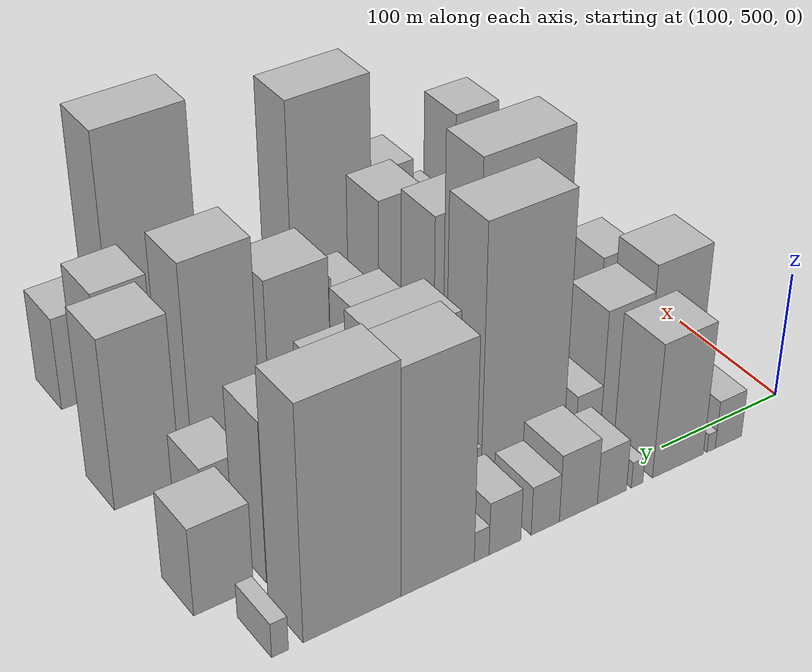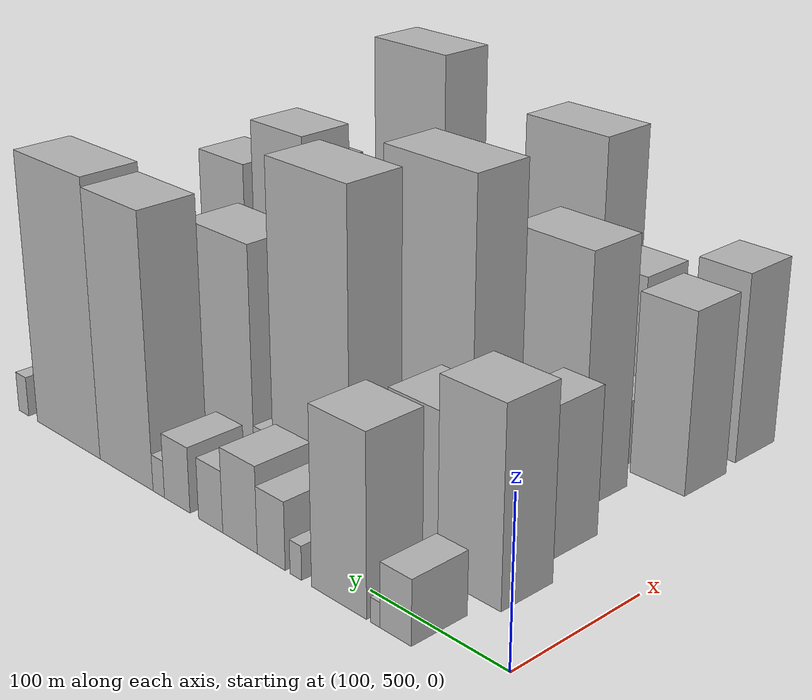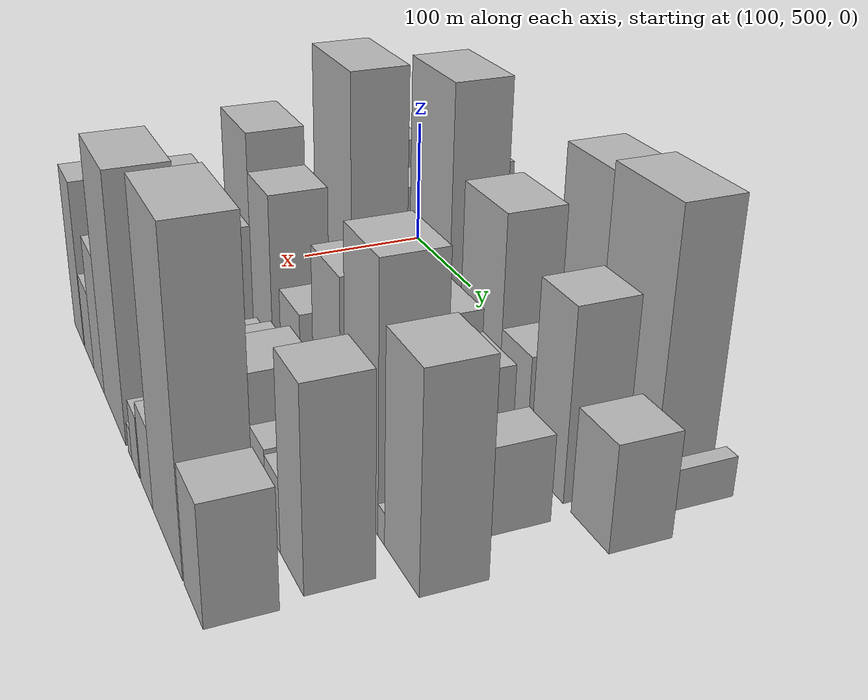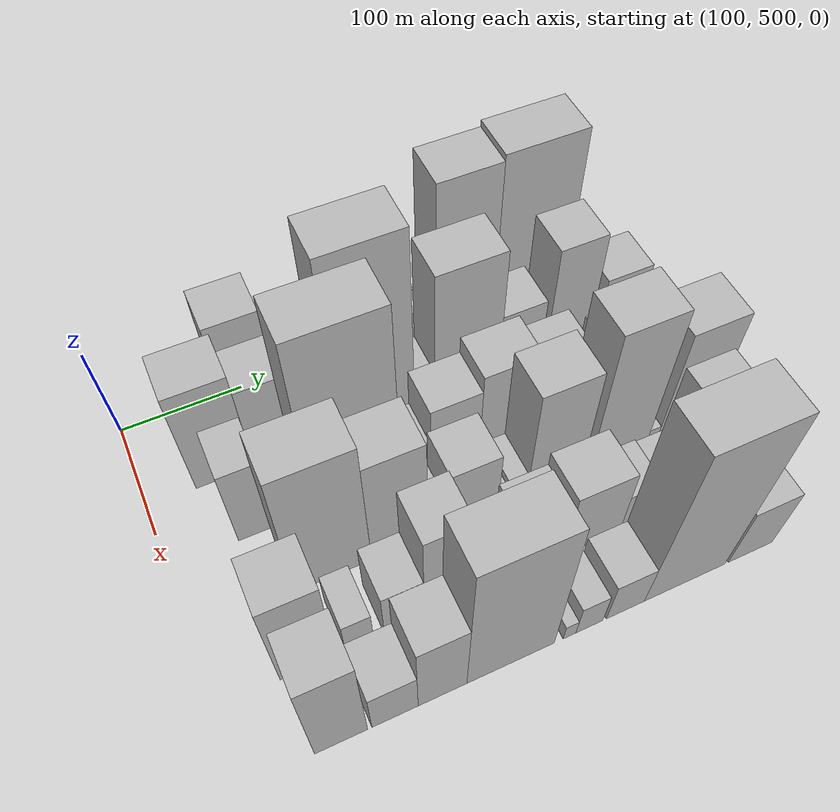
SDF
<sdf version="1.6">
 <world name="default">
  <model name="building_37">
   <static>1</static>
   <pose>100.0000 559.9014 0 0.000000 0.000000 0.000000</pose>
   <link name="link">
    <pose>0 0 19.50 0 0 0</pose>
    <collision name="collision"><geometry><box><size>40.0000 22.7215 39.0000</size></box></geometry></collision>
    <visual name="visual">
     <cast_shadows>0</cast_shadows>
     <geometry><box><size>40.0000 22.7215 39.0000</size></box></geometry>
     <material>
      <script>
       <uri>model://HANNAS_wall/materials/scripts</uri>
       <uri>model://HANNAS_wall/materials/textures</uri>
       <name>vrc/HANNAS_wall</name>
      </script>
     </material>
    </visual>
   </link>
  </model>
  <model name="building_38">
   <static>1</static>
   <pose>100.0000 574.8513 0 0.000000 0.000000 0.000000</pose>
   <link name="link">
    <pose>0 0 7.50 0 0 0</pose>
    <collision name="collision"><geometry><box><size>40.0000 7.1783 15.0000</size></box></geometry></collision>
    <visual name="visual">
     <cast_shadows>0</cast_shadows>
     <geometry><box><size>40.0000 7.1783 15.0000</size></box></geometry>
     <material>
      <script>
       <uri>model://HANNAS_wall/materials/scripts</uri>
       <uri>model://HANNAS_wall/materials/textures</uri>
       <name>vrc/HANNAS_wall</name>
      </script>
     </material>
    </visual>
   </link>
  </model>
  <model name="building_39">
   <static>1</static>
   <pose>100.0000 602.8528 0 0.000000 0.000000 0.000000</pose>
   <link name="link">
    <pose>0 0 54.00 0 0 0</pose>
    <collision name="collision"><geometry><box><size>40.0000 42.8248 108.0000</size></box></geometry></collision>
    <visual name="visual">
     <cast_shadows>0</cast_shadows>
     <geometry><box><size>40.0000 42.8248 108.0000</size></box></geometry>
     <material>
      <script>
       <uri>model://HANNAS_wall/materials/scripts</uri>
       <uri>model://HANNAS_wall/materials/textures</uri>
       <name>vrc/HANNAS_wall</name>
      </script>
     </material>
    </visual>
   </link>
  </model>
  <model name="building_40">
   <static>1</static>
   <pose>100.0000 637.0254 0 0.000000 0.000000 0.000000</pose>
   <link name="link">
    <pose>0 0 10.50 0 0 0</pose>
    <collision name="collision"><geometry><box><size>40.0000 9.5204 21.0000</size></box></geometry></collision>
    <visual name="visual">
     <cast_shadows>0</cast_shadows>
     <geometry><box><size>40.0000 9.5204 21.0000</size></box></geometry>
     <material>
      <script>
       <uri>model://HANNAS_wall/materials/scripts</uri>
       <uri>model://HANNAS_wall/materials/textures</uri>
       <name>vrc/HANNAS_wall</name>
      </script>
     </material>
    </visual>
   </link>
  </model>
  <model name="building_41">
   <static>1</static>
   <pose>100.0000 657.5526 0 0.000000 0.000000 0.000000</pose>
   <link name="link">
    <pose>0 0 21.00 0 0 0</pose>
    <collision name="collision"><geometry><box><size>40.0000 23.5340 42.0000</size></box></geometry></collision>
    <visual name="visual">
     <cast_shadows>0</cast_shadows>
     <geometry><box><size>40.0000 23.5340 42.0000</size></box></geometry>
     <material>
      <script>
       <uri>model://HANNAS_wall/materials/scripts</uri>
       <uri>model://HANNAS_wall/materials/textures</uri>
       <name>vrc/HANNAS_wall</name>
      </script>
     </material>
    </visual>
   </link>
  </model>
  <model name="building_42">
   <static>1</static>
   <pose>100.0000 684.4716 0 0.000000 0.000000 0.000000</pose>
   <link name="link">
    <pose>0 0 27.00 0 0 0</pose>
    <collision name="collision"><geometry><box><size>40.0000 30.3041 54.0000</size></box></geometry></collision>
    <visual name="visual">
     <cast_shadows>0</cast_shadows>
     <geometry><box><size>40.0000 30.3041 54.0000</size></box></geometry>
     <material>
      <script>
       <uri>model://HANNAS_wall/materials/scripts</uri>
       <uri>model://HANNAS_wall/materials/textures</uri>
       <name>vrc/HANNAS_wall</name>
      </script>
     </material>
    </visual>
   </link>
  </model>
  <model name="building_43">
   <static>1</static>
   <pose>100.0000 710.6328 0 0.000000 0.000000 0.000000</pose>
   <link name="link">
    <pose>0 0 19.50 0 0 0</pose>
    <collision name="collision"><geometry><box><size>40.0000 22.0183 39.0000</size></box></geometry></collision>
    <visual name="visual">
     <cast_shadows>0</cast_shadows>
     <geometry><box><size>40.0000 22.0183 39.0000</size></box></geometry>
     <material>
      <script>
       <uri>model://HANNAS_wall/materials/scripts</uri>
       <uri>model://HANNAS_wall/materials/textures</uri>
       <name>vrc/HANNAS_wall</name>
      </script>
     </material>
    </visual>
   </link>
  </model>
  <model name="building_44">
   <static>1</static>
   <pose>100.0000 741.7868 0 0.000000 0.000000 0.000000</pose>
   <link name="link">
    <pose>0 0 21.00 0 0 0</pose>
    <collision name="collision"><geometry><box><size>40.0000 24.2898 42.0000</size></box></geometry></collision>
    <visual name="visual">
     <cast_shadows>0</cast_shadows>
     <geometry><box><size>40.0000 24.2898 42.0000</size></box></geometry>
     <material>
      <script>
       <uri>model://HANNAS_wall/materials/scripts</uri>
       <uri>model://HANNAS_wall/materials/textures</uri>
       <name>vrc/HANNAS_wall</name>
      </script>
     </material>
    </visual>
   </link>
  </model>
  <model name="building_45">
   <static>1</static>
   <pose>100.0000 759.4877 0 0.000000 0.000000 0.000000</pose>
   <link name="link">
    <pose>0 0 12.00 0 0 0</pose>
    <collision name="collision"><geometry><box><size>40.0000 11.1120 24.0000</size></box></geometry></collision>
    <visual name="visual">
     <cast_shadows>0</cast_shadows>
     <geometry><box><size>40.0000 11.1120 24.0000</size></box></geometry>
     <material>
      <script>
       <uri>model://HANNAS_wall/materials/scripts</uri>
       <uri>model://HANNAS_wall/materials/textures</uri>
       <name>vrc/HANNAS_wall</name>
      </script>
     </material>
    </visual>
   </link>
  </model>
  <model name="building_46">
   <static>1</static>
   <pose>100.0000 791.9867 0 0.000000 0.000000 0.000000</pose>
   <link name="link">
    <pose>0 0 87.00 0 0 0</pose>
    <collision name="collision"><geometry><box><size>40.0000 53.8859 174.0000</size></box></geometry></collision>
    <visual name="visual">
     <cast_shadows>0</cast_shadows>
     <geometry><box><size>40.0000 53.8859 174.0000</size></box></geometry>
     <material>
      <script>
       <uri>model://HANNAS_wall/materials/scripts</uri>
       <uri>model://HANNAS_wall/materials/textures</uri>
       <name>vrc/HANNAS_wall</name>
      </script>
     </material>
    </visual>
   </link>
  </model>
  <model name="building_47">
   <static>1</static>
   <pose>100.0000 853.4867 0 0.000000 0.000000 0.000000</pose>
   <link name="link">
    <pose>0 0 90.00 0 0 0</pose>
    <collision name="collision"><geometry><box><size>40.0000 69.1143 180.0000</size></box></geometry></collision>
    <visual name="visual">
     <cast_shadows>0</cast_shadows>
     <geometry><box><size>40.0000 69.1143 180.0000</size></box></geometry>
     <material>
      <script>
       <uri>model://HANNAS_wall/materials/scripts</uri>
       <uri>model://HANNAS_wall/materials/textures</uri>
       <name>vrc/HANNAS_wall</name>
      </script>
     </material>
    </visual>
   </link>
  </model>
  <model name="building_48">
   <static>1</static>
   <pose>100.0000 903.7542 0 0.000000 0.000000 0.000000</pose>
   <link name="link">
    <pose>0 0 13.50 0 0 0</pose>
    <collision name="collision"><geometry><box><size>40.0000 11.4207 27.0000</size></box></geometry></collision>
    <visual name="visual">
     <cast_shadows>0</cast_shadows>
     <geometry><box><size>40.0000 11.4207 27.0000</size></box></geometry>
     <material>
      <script>
       <uri>model://HANNAS_wall/materials/scripts</uri>
       <uri>model://HANNAS_wall/materials/textures</uri>
       <name>vrc/HANNAS_wall</name>
      </script>
     </material>
    </visual>
   </link>
  </model>
  <model name="building_85">
   <static>1</static>
   <pose>155.0000 562.0766 0 0.000000 0.000000 0.000000</pose>
   <link name="link">
    <pose>0 0 60.00 0 0 0</pose>
    <collision name="collision"><geometry><box><size>40.0000 46.4709 120.0000</size></box></geometry></collision>
    <visual name="visual">
     <cast_shadows>0</cast_shadows>
     <geometry><box><size>40.0000 46.4709 120.0000</size></box></geometry>
     <material>
      <script>
       <uri>model://HANNAS_wall/materials/scripts</uri>
       <uri>model://HANNAS_wall/materials/textures</uri>
       <name>vrc/HANNAS_wall</name>
      </script>
     </material>
    </visual>
   </link>
  </model>
  <model name="building_86">
   <static>1</static>
   <pose>155.0000 604.4130 0 0.000000 0.000000 0.000000</pose>
   <link name="link">
    <pose>0 0 49.50 0 0 0</pose>
    <collision name="collision"><geometry><box><size>40.0000 38.2018 99.0000</size></box></geometry></collision>
    <visual name="visual">
     <cast_shadows>0</cast_shadows>
     <geometry><box><size>40.0000 38.2018 99.0000</size></box></geometry>
     <material>
      <script>
       <uri>model://HANNAS_wall/materials/scripts</uri>
       <uri>model://HANNAS_wall/materials/textures</uri>
       <name>vrc/HANNAS_wall</name>
      </script>
     </material>
    </visual>
   </link>
  </model>
  <model name="building_87">
   <static>1</static>
   <pose>155.0000 634.0637 0 0.000000 0.000000 0.000000</pose>
   <link name="link">
    <pose>0 0 19.50 0 0 0</pose>
    <collision name="collision"><geometry><box><size>40.0000 21.0996 39.0000</size></box></geometry></collision>
    <visual name="visual">
     <cast_shadows>0</cast_shadows>
     <geometry><box><size>40.0000 21.0996 39.0000</size></box></geometry>
     <material>
      <script>
       <uri>model://HANNAS_wall/materials/scripts</uri>
       <uri>model://HANNAS_wall/materials/textures</uri>
       <name>vrc/HANNAS_wall</name>
      </script>
     </material>
    </visual>
   </link>
  </model>
  <model name="building_88">
   <static>1</static>
   <pose>155.0000 687.7548 0 0.000000 0.000000 0.000000</pose>
   <link name="link">
    <pose>0 0 102.00 0 0 0</pose>
    <collision name="collision"><geometry><box><size>40.0000 66.2826 204.0000</size></box></geometry></collision>
    <visual name="visual">
     <cast_shadows>0</cast_shadows>
     <geometry><box><size>40.0000 66.2826 204.0000</size></box></geometry>
     <material>
      <script>
       <uri>model://HANNAS_wall/materials/scripts</uri>
       <uri>model://HANNAS_wall/materials/textures</uri>
       <name>vrc/HANNAS_wall</name>
      </script>
     </material>
    </visual>
   </link>
  </model>
  <model name="building_89">
   <static>1</static>
   <pose>155.0000 729.8354 0 0.000000 0.000000 0.000000</pose>
   <link name="link">
    <pose>0 0 16.50 0 0 0</pose>
    <collision name="collision"><geometry><box><size>40.0000 17.8785 33.0000</size></box></geometry></collision>
    <visual name="visual">
     <cast_shadows>0</cast_shadows>
     <geometry><box><size>40.0000 17.8785 33.0000</size></box></geometry>
     <material>
      <script>
       <uri>model://HANNAS_wall/materials/scripts</uri>
       <uri>model://HANNAS_wall/materials/textures</uri>
       <name>vrc/HANNAS_wall</name>
      </script>
     </material>
    </visual>
   </link>
  </model>
  <model name="building_90">
   <static>1</static>
   <pose>155.0000 767.5623 0 0.000000 0.000000 0.000000</pose>
   <link name="link">
    <pose>0 0 73.50 0 0 0</pose>
    <collision name="collision"><geometry><box><size>40.0000 57.5753 147.0000</size></box></geometry></collision>
    <visual name="visual">
     <cast_shadows>0</cast_shadows>
     <geometry><box><size>40.0000 57.5753 147.0000</size></box></geometry>
     <material>
      <script>
       <uri>model://HANNAS_wall/materials/scripts</uri>
       <uri>model://HANNAS_wall/materials/textures</uri>
       <name>vrc/HANNAS_wall</name>
      </script>
     </material>
    </visual>
   </link>
  </model>
  <model name="building_91">
   <static>1</static>
   <pose>155.0000 815.6131 0 0.000000 0.000000 0.000000</pose>
   <link name="link">
    <pose>0 0 36.00 0 0 0</pose>
    <collision name="collision"><geometry><box><size>40.0000 38.5262 72.0000</size></box></geometry></collision>
    <visual name="visual">
     <cast_shadows>0</cast_shadows>
     <geometry><box><size>40.0000 38.5262 72.0000</size></box></geometry>
     <material>
      <script>
       <uri>model://HANNAS_wall/materials/scripts</uri>
       <uri>model://HANNAS_wall/materials/textures</uri>
       <name>vrc/HANNAS_wall</name>
      </script>
     </material>
    </visual>
   </link>
  </model>
  <model name="building_92">
   <static>1</static>
   <pose>155.0000 860.1425 0 0.000000 0.000000 0.000000</pose>
   <link name="link">
    <pose>0 0 63.00 0 0 0</pose>
    <collision name="collision"><geometry><box><size>40.0000 40.5325 126.0000</size></box></geometry></collision>
    <visual name="visual">
     <cast_shadows>0</cast_shadows>
     <geometry><box><size>40.0000 40.5325 126.0000</size></box></geometry>
     <material>
      <script>
       <uri>model://HANNAS_wall/materials/scripts</uri>
       <uri>model://HANNAS_wall/materials/textures</uri>
       <name>vrc/HANNAS_wall</name>
      </script>
     </material>
    </visual>
   </link>
  </model>
  <model name="building_93">
   <static>1</static>
   <pose>155.0000 910.0466 0 0.000000 0.000000 0.000000</pose>
   <link name="link">
    <pose>0 0 34.50 0 0 0</pose>
    <collision name="collision"><geometry><box><size>40.0000 41.2759 69.0000</size></box></geometry></collision>
    <visual name="visual">
     <cast_shadows>0</cast_shadows>
     <geometry><box><size>40.0000 41.2759 69.0000</size></box></geometry>
     <material>
      <script>
       <uri>model://HANNAS_wall/materials/scripts</uri>
       <uri>model://HANNAS_wall/materials/textures</uri>
       <name>vrc/HANNAS_wall</name>
      </script>
     </material>
    </visual>
   </link>
  </model>
  <model name="building_135">
   <static>1</static>
   <pose>210.0000 569.1739 0 0.000000 0.000000 0.000000</pose>
   <link name="link">
    <pose>0 0 46.50 0 0 0</pose>
    <collision name="collision"><geometry><box><size>40.0000 29.3828 93.0000</size></box></geometry></collision>
    <visual name="visual">
     <cast_shadows>0</cast_shadows>
     <geometry><box><size>40.0000 29.3828 93.0000</size></box></geometry>
     <material>
      <script>
       <uri>model://HANNAS_wall/materials/scripts</uri>
       <uri>model://HANNAS_wall/materials/textures</uri>
       <name>vrc/HANNAS_wall</name>
      </script>
     </material>
    </visual>
   </link>
  </model>
  <model name="building_136">
   <static>1</static>
   <pose>210.0000 598.7852 0 0.000000 0.000000 0.000000</pose>
   <link name="link">
    <pose>0 0 28.50 0 0 0</pose>
    <collision name="collision"><geometry><box><size>40.0000 29.8399 57.0000</size></box></geometry></collision>
    <visual name="visual">
     <cast_shadows>0</cast_shadows>
     <geometry><box><size>40.0000 29.8399 57.0000</size></box></geometry>
     <material>
      <script>
       <uri>model://HANNAS_wall/materials/scripts</uri>
       <uri>model://HANNAS_wall/materials/textures</uri>
       <name>vrc/HANNAS_wall</name>
      </script>
     </material>
    </visual>
   </link>
  </model>
  <model name="building_137">
   <static>1</static>
   <pose>210.0000 649.4299 0 0.000000 0.000000 0.000000</pose>
   <link name="link">
    <pose>0 0 103.50 0 0 0</pose>
    <collision name="collision"><geometry><box><size>40.0000 71.4493 207.0000</size></box></geometry></collision>
    <visual name="visual">
     <cast_shadows>0</cast_shadows>
     <geometry><box><size>40.0000 71.4493 207.0000</size></box></geometry>
     <material>
      <script>
       <uri>model://HANNAS_wall/materials/scripts</uri>
       <uri>model://HANNAS_wall/materials/textures</uri>
       <name>vrc/HANNAS_wall</name>
      </script>
     </material>
    </visual>
   </link>
  </model>
  <model name="building_138">
   <static>1</static>
   <pose>210.0000 701.4384 0 0.000000 0.000000 0.000000</pose>
   <link name="link">
    <pose>0 0 15.00 0 0 0</pose>
    <collision name="collision"><geometry><box><size>40.0000 16.5676 30.0000</size></box></geometry></collision>
    <visual name="visual">
     <cast_shadows>0</cast_shadows>
     <geometry><box><size>40.0000 16.5676 30.0000</size></box></geometry>
     <material>
      <script>
       <uri>model://HANNAS_wall/materials/scripts</uri>
       <uri>model://HANNAS_wall/materials/textures</uri>
       <name>vrc/HANNAS_wall</name>
      </script>
     </material>
    </visual>
   </link>
  </model>
  <model name="building_139">
   <static>1</static>
   <pose>210.0000 730.9007 0 0.000000 0.000000 0.000000</pose>
   <link name="link">
    <pose>0 0 36.00 0 0 0</pose>
    <collision name="collision"><geometry><box><size>40.0000 42.3570 72.0000</size></box></geometry></collision>
    <visual name="visual">
     <cast_shadows>0</cast_shadows>
     <geometry><box><size>40.0000 42.3570 72.0000</size></box></geometry>
     <material>
      <script>
       <uri>model://HANNAS_wall/materials/scripts</uri>
       <uri>model://HANNAS_wall/materials/textures</uri>
       <name>vrc/HANNAS_wall</name>
      </script>
     </material>
    </visual>
   </link>
  </model>
  <model name="building_140">
   <static>1</static>
   <pose>210.0000 776.2960 0 0.000000 0.000000 0.000000</pose>
   <link name="link">
    <pose>0 0 45.00 0 0 0</pose>
    <collision name="collision"><geometry><box><size>40.0000 48.4338 90.0000</size></box></geometry></collision>
    <visual name="visual">
     <cast_shadows>0</cast_shadows>
     <geometry><box><size>40.0000 48.4338 90.0000</size></box></geometry>
     <material>
      <script>
       <uri>model://HANNAS_wall/materials/scripts</uri>
       <uri>model://HANNAS_wall/materials/textures</uri>
       <name>vrc/HANNAS_wall</name>
      </script>
     </material>
    </visual>
   </link>
  </model>
  <model name="building_141">
   <static>1</static>
   <pose>210.0000 822.3002 0 0.000000 0.000000 0.000000</pose>
   <link name="link">
    <pose>0 0 37.50 0 0 0</pose>
    <collision name="collision"><geometry><box><size>40.0000 43.5746 75.0000</size></box></geometry></collision>
    <visual name="visual">
     <cast_shadows>0</cast_shadows>
     <geometry><box><size>40.0000 43.5746 75.0000</size></box></geometry>
     <material>
      <script>
       <uri>model://HANNAS_wall/materials/scripts</uri>
       <uri>model://HANNAS_wall/materials/textures</uri>
       <name>vrc/HANNAS_wall</name>
      </script>
     </material>
    </visual>
   </link>
  </model>
  <model name="building_142">
   <static>1</static>
   <pose>210.0000 852.6210 0 0.000000 0.000000 0.000000</pose>
   <link name="link">
    <pose>0 0 15.00 0 0 0</pose>
    <collision name="collision"><geometry><box><size>40.0000 17.0670 30.0000</size></box></geometry></collision>
    <visual name="visual">
     <cast_shadows>0</cast_shadows>
     <geometry><box><size>40.0000 17.0670 30.0000</size></box></geometry>
     <material>
      <script>
       <uri>model://HANNAS_wall/materials/scripts</uri>
       <uri>model://HANNAS_wall/materials/textures</uri>
       <name>vrc/HANNAS_wall</name>
      </script>
     </material>
    </visual>
   </link>
  </model>
  <model name="building_143">
   <static>1</static>
   <pose>210.0000 877.0241 0 0.000000 0.000000 0.000000</pose>
   <link name="link">
    <pose>0 0 28.50 0 0 0</pose>
    <collision name="collision"><geometry><box><size>40.0000 31.7392 57.0000</size></box></geometry></collision>
    <visual name="visual">
     <cast_shadows>0</cast_shadows>
     <geometry><box><size>40.0000 31.7392 57.0000</size></box></geometry>
     <material>
      <script>
       <uri>model://HANNAS_wall/materials/scripts</uri>
       <uri>model://HANNAS_wall/materials/textures</uri>
       <name>vrc/HANNAS_wall</name>
      </script>
     </material>
    </visual>
   </link>
  </model>
  <model name="building_183">
   <static>1</static>
   <pose>265.0000 607.8353 0 0.000000 0.000000 0.000000</pose>
   <link name="link">
    <pose>0 0 79.50 0 0 0</pose>
    <collision name="collision"><geometry><box><size>40.0000 59.3630 159.0000</size></box></geometry></collision>
    <visual name="visual">
     <cast_shadows>0</cast_shadows>
     <geometry><box><size>40.0000 59.3630 159.0000</size></box></geometry>
     <material>
      <script>
       <uri>model://HANNAS_wall/materials/scripts</uri>
       <uri>model://HANNAS_wall/materials/textures</uri>
       <name>vrc/HANNAS_wall</name>
      </script>
     </material>
    </visual>
   </link>
  </model>
  <model name="building_184">
   <static>1</static>
   <pose>265.0000 659.9284 0 0.000000 0.000000 0.000000</pose>
   <link name="link">
    <pose>0 0 66.00 0 0 0</pose>
    <collision name="collision"><geometry><box><size>40.0000 44.8231 132.0000</size></box></geometry></collision>
    <visual name="visual">
     <cast_shadows>0</cast_shadows>
     <geometry><box><size>40.0000 44.8231 132.0000</size></box></geometry>
     <material>
      <script>
       <uri>model://HANNAS_wall/materials/scripts</uri>
       <uri>model://HANNAS_wall/materials/textures</uri>
       <name>vrc/HANNAS_wall</name>
      </script>
     </material>
    </visual>
   </link>
  </model>
  <model name="building_185">
   <static>1</static>
   <pose>265.0000 691.2650 0 0.000000 0.000000 0.000000</pose>
   <link name="link">
    <pose>0 0 15.00 0 0 0</pose>
    <collision name="collision"><geometry><box><size>40.0000 17.8501 30.0000</size></box></geometry></collision>
    <visual name="visual">
     <cast_shadows>0</cast_shadows>
     <geometry><box><size>40.0000 17.8501 30.0000</size></box></geometry>
     <material>
      <script>
       <uri>model://HANNAS_wall/materials/scripts</uri>
       <uri>model://HANNAS_wall/materials/textures</uri>
       <name>vrc/HANNAS_wall</name>
      </script>
     </material>
    </visual>
   </link>
  </model>
  <model name="building_186">
   <static>1</static>
   <pose>265.0000 720.0970 0 0.000000 0.000000 0.000000</pose>
   <link name="link">
    <pose>0 0 37.50 0 0 0</pose>
    <collision name="collision"><geometry><box><size>40.0000 39.8139 75.0000</size></box></geometry></collision>
    <visual name="visual">
     <cast_shadows>0</cast_shadows>
     <geometry><box><size>40.0000 39.8139 75.0000</size></box></geometry>
     <material>
      <script>
       <uri>model://HANNAS_wall/materials/scripts</uri>
       <uri>model://HANNAS_wall/materials/textures</uri>
       <name>vrc/HANNAS_wall</name>
      </script>
     </material>
    </visual>
   </link>
  </model>
  <model name="building_187">
   <static>1</static>
   <pose>265.0000 744.3491 0 0.000000 0.000000 0.000000</pose>
   <link name="link">
    <pose>0 0 10.50 0 0 0</pose>
    <collision name="collision"><geometry><box><size>40.0000 8.6904 21.0000</size></box></geometry></collision>
    <visual name="visual">
     <cast_shadows>0</cast_shadows>
     <geometry><box><size>40.0000 8.6904 21.0000</size></box></geometry>
     <material>
      <script>
       <uri>model://HANNAS_wall/materials/scripts</uri>
       <uri>model://HANNAS_wall/materials/textures</uri>
       <name>vrc/HANNAS_wall</name>
      </script>
     </material>
    </visual>
   </link>
  </model>
  <model name="building_188">
   <static>1</static>
   <pose>265.0000 756.6039 0 0.000000 0.000000 0.000000</pose>
   <link name="link">
    <pose>0 0 15.00 0 0 0</pose>
    <collision name="collision"><geometry><box><size>40.0000 15.8192 30.0000</size></box></geometry></collision>
    <visual name="visual">
     <cast_shadows>0</cast_shadows>
     <geometry><box><size>40.0000 15.8192 30.0000</size></box></geometry>
     <material>
      <script>
       <uri>model://HANNAS_wall/materials/scripts</uri>
       <uri>model://HANNAS_wall/materials/textures</uri>
       <name>vrc/HANNAS_wall</name>
      </script>
     </material>
    </visual>
   </link>
  </model>
  <model name="building_189">
   <static>1</static>
   <pose>265.0000 788.1721 0 0.000000 0.000000 0.000000</pose>
   <link name="link">
    <pose>0 0 66.00 0 0 0</pose>
    <collision name="collision"><geometry><box><size>40.0000 47.3171 132.0000</size></box></geometry></collision>
    <visual name="visual">
     <cast_shadows>0</cast_shadows>
     <geometry><box><size>40.0000 47.3171 132.0000</size></box></geometry>
     <material>
      <script>
       <uri>model://HANNAS_wall/materials/scripts</uri>
       <uri>model://HANNAS_wall/materials/textures</uri>
       <name>vrc/HANNAS_wall</name>
      </script>
     </material>
    </visual>
   </link>
  </model>
  <model name="building_190">
   <static>1</static>
   <pose>265.0000 844.2851 0 0.000000 0.000000 0.000000</pose>
   <link name="link">
    <pose>0 0 84.00 0 0 0</pose>
    <collision name="collision"><geometry><box><size>40.0000 50.9089 168.0000</size></box></geometry></collision>
    <visual name="visual">
     <cast_shadows>0</cast_shadows>
     <geometry><box><size>40.0000 50.9089 168.0000</size></box></geometry>
     <material>
      <script>
       <uri>model://HANNAS_wall/materials/scripts</uri>
       <uri>model://HANNAS_wall/materials/textures</uri>
       <name>vrc/HANNAS_wall</name>
      </script>
     </material>
    </visual>
   </link>
  </model>
  <model name="building_191">
   <static>1</static>
   <pose>265.0000 874.5580 0 0.000000 0.000000 0.000000</pose>
   <link name="link">
    <pose>0 0 10.50 0 0 0</pose>
    <collision name="collision"><geometry><box><size>40.0000 9.6368 21.0000</size></box></geometry></collision>
    <visual name="visual">
     <cast_shadows>0</cast_shadows>
     <geometry><box><size>40.0000 9.6368 21.0000</size></box></geometry>
     <material>
      <script>
       <uri>model://HANNAS_wall/materials/scripts</uri>
       <uri>model://HANNAS_wall/materials/textures</uri>
       <name>vrc/HANNAS_wall</name>
      </script>
     </material>
    </visual>
   </link>
  </model>
  <model name="building_192">
   <static>1</static>
   <pose>265.0000 903.0840 0 0.000000 0.000000 0.000000</pose>
   <link name="link">
    <pose>0 0 67.50 0 0 0</pose>
    <collision name="collision"><geometry><box><size>40.0000 47.4153 135.0000</size></box></geometry></collision>
    <visual name="visual">
     <cast_shadows>0</cast_shadows>
     <geometry><box><size>40.0000 47.4153 135.0000</size></box></geometry>
     <material>
      <script>
       <uri>model://HANNAS_wall/materials/scripts</uri>
       <uri>model://HANNAS_wall/materials/textures</uri>
       <name>vrc/HANNAS_wall</name>
      </script>
     </material>
    </visual>
   </link>
  </model>
  <model name="building_235">
   <static>1</static>
   <pose>320.0000 567.7353 0 0.000000 0.000000 0.000000</pose>
   <link name="link">
    <pose>0 0 58.50 0 0 0</pose>
    <collision name="collision"><geometry><box><size>40.0000 40.5180 117.0000</size></box></geometry></collision>
    <visual name="visual">
     <cast_shadows>0</cast_shadows>
     <geometry><box><size>40.0000 40.5180 117.0000</size></box></geometry>
     <material>
      <script>
       <uri>model://HANNAS_wall/materials/scripts</uri>
       <uri>model://HANNAS_wall/materials/textures</uri>
       <name>vrc/HANNAS_wall</name>
      </script>
     </material>
    </visual>
   </link>
  </model>
  <model name="building_236">
   <static>1</static>
   <pose>320.0000 605.5642 0 0.000000 0.000000 0.000000</pose>
   <link name="link">
    <pose>0 0 21.00 0 0 0</pose>
    <collision name="collision"><geometry><box><size>40.0000 21.1398 42.0000</size></box></geometry></collision>
    <visual name="visual">
     <cast_shadows>0</cast_shadows>
     <geometry><box><size>40.0000 21.1398 42.0000</size></box></geometry>
     <material>
      <script>
       <uri>model://HANNAS_wall/materials/scripts</uri>
       <uri>model://HANNAS_wall/materials/textures</uri>
       <name>vrc/HANNAS_wall</name>
      </script>
     </material>
    </visual>
   </link>
  </model>
  <model name="building_237">
   <static>1</static>
   <pose>320.0000 639.3815 0 0.000000 0.000000 0.000000</pose>
   <link name="link">
    <pose>0 0 30.00 0 0 0</pose>
    <collision name="collision"><geometry><box><size>40.0000 30.4948 60.0000</size></box></geometry></collision>
    <visual name="visual">
     <cast_shadows>0</cast_shadows>
     <geometry><box><size>40.0000 30.4948 60.0000</size></box></geometry>
     <material>
      <script>
       <uri>model://HANNAS_wall/materials/scripts</uri>
       <uri>model://HANNAS_wall/materials/textures</uri>
       <name>vrc/HANNAS_wall</name>
      </script>
     </material>
    </visual>
   </link>
  </model>
  <model name="building_238">
   <static>1</static>
   <pose>320.0000 672.7382 0 0.000000 0.000000 0.000000</pose>
   <link name="link">
    <pose>0 0 58.50 0 0 0</pose>
    <collision name="collision"><geometry><box><size>40.0000 36.2186 117.0000</size></box></geometry></collision>
    <visual name="visual">
     <cast_shadows>0</cast_shadows>
     <geometry><box><size>40.0000 36.2186 117.0000</size></box></geometry>
     <material>
      <script>
       <uri>model://HANNAS_wall/materials/scripts</uri>
       <uri>model://HANNAS_wall/materials/textures</uri>
       <name>vrc/HANNAS_wall</name>
      </script>
     </material>
    </visual>
   </link>
  </model>
  <model name="building_239">
   <static>1</static>
   <pose>320.0000 694.8716 0 0.000000 0.000000 0.000000</pose>
   <link name="link">
    <pose>0 0 9.00 0 0 0</pose>
    <collision name="collision"><geometry><box><size>40.0000 8.0483 18.0000</size></box></geometry></collision>
    <visual name="visual">
     <cast_shadows>0</cast_shadows>
     <geometry><box><size>40.0000 8.0483 18.0000</size></box></geometry>
     <material>
      <script>
       <uri>model://HANNAS_wall/materials/scripts</uri>
       <uri>model://HANNAS_wall/materials/textures</uri>
       <name>vrc/HANNAS_wall</name>
      </script>
     </material>
    </visual>
   </link>
  </model>
  <model name="building_240">
   <static>1</static>
   <pose>320.0000 714.1325 0 0.000000 0.000000 0.000000</pose>
   <link name="link">
    <pose>0 0 28.50 0 0 0</pose>
    <collision name="collision"><geometry><box><size>40.0000 30.4734 57.0000</size></box></geometry></collision>
    <visual name="visual">
     <cast_shadows>0</cast_shadows>
     <geometry><box><size>40.0000 30.4734 57.0000</size></box></geometry>
     <material>
      <script>
       <uri>model://HANNAS_wall/materials/scripts</uri>
       <uri>model://HANNAS_wall/materials/textures</uri>
       <name>vrc/HANNAS_wall</name>
      </script>
     </material>
    </visual>
   </link>
  </model>
  <model name="building_241">
   <static>1</static>
   <pose>320.0000 748.4085 0 0.000000 0.000000 0.000000</pose>
   <link name="link">
    <pose>0 0 34.50 0 0 0</pose>
    <collision name="collision"><geometry><box><size>40.0000 38.0786 69.0000</size></box></geometry></collision>
    <visual name="visual">
     <cast_shadows>0</cast_shadows>
     <geometry><box><size>40.0000 38.0786 69.0000</size></box></geometry>
     <material>
      <script>
       <uri>model://HANNAS_wall/materials/scripts</uri>
       <uri>model://HANNAS_wall/materials/textures</uri>
       <name>vrc/HANNAS_wall</name>
      </script>
     </material>
    </visual>
   </link>
  </model>
  <model name="building_242">
   <static>1</static>
   <pose>320.0000 790.4983 0 0.000000 0.000000 0.000000</pose>
   <link name="link">
    <pose>0 0 42.00 0 0 0</pose>
    <collision name="collision"><geometry><box><size>40.0000 46.1010 84.0000</size></box></geometry></collision>
    <visual name="visual">
     <cast_shadows>0</cast_shadows>
     <geometry><box><size>40.0000 46.1010 84.0000</size></box></geometry>
     <material>
      <script>
       <uri>model://HANNAS_wall/materials/scripts</uri>
       <uri>model://HANNAS_wall/materials/textures</uri>
       <name>vrc/HANNAS_wall</name>
      </script>
     </material>
    </visual>
   </link>
  </model>
  <model name="building_243">
   <static>1</static>
   <pose>320.0000 827.0368 0 0.000000 0.000000 0.000000</pose>
   <link name="link">
    <pose>0 0 25.50 0 0 0</pose>
    <collision name="collision"><geometry><box><size>40.0000 26.9760 51.0000</size></box></geometry></collision>
    <visual name="visual">
     <cast_shadows>0</cast_shadows>
     <geometry><box><size>40.0000 26.9760 51.0000</size></box></geometry>
     <material>
      <script>
       <uri>model://HANNAS_wall/materials/scripts</uri>
       <uri>model://HANNAS_wall/materials/textures</uri>
       <name>vrc/HANNAS_wall</name>
      </script>
     </material>
    </visual>
   </link>
  </model>
  <model name="building_244">
   <static>1</static>
   <pose>320.0000 852.7846 0 0.000000 0.000000 0.000000</pose>
   <link name="link">
    <pose>0 0 24.00 0 0 0</pose>
    <collision name="collision"><geometry><box><size>40.0000 24.5197 48.0000</size></box></geometry></collision>
    <visual name="visual">
     <cast_shadows>0</cast_shadows>
     <geometry><box><size>40.0000 24.5197 48.0000</size></box></geometry>
     <material>
      <script>
       <uri>model://HANNAS_wall/materials/scripts</uri>
       <uri>model://HANNAS_wall/materials/textures</uri>
       <name>vrc/HANNAS_wall</name>
      </script>
     </material>
    </visual>
   </link>
  </model>
  <model name="building_245">
   <static>1</static>
   <pose>320.0000 884.5489 0 0.000000 0.000000 0.000000</pose>
   <link name="link">
    <pose>0 0 63.00 0 0 0</pose>
    <collision name="collision"><geometry><box><size>40.0000 39.0088 126.0000</size></box></geometry></collision>
    <visual name="visual">
     <cast_shadows>0</cast_shadows>
     <geometry><box><size>40.0000 39.0088 126.0000</size></box></geometry>
     <material>
      <script>
       <uri>model://HANNAS_wall/materials/scripts</uri>
       <uri>model://HANNAS_wall/materials/textures</uri>
       <name>vrc/HANNAS_wall</name>
      </script>
     </material>
    </visual>
   </link>
  </model>
  <model name="building_292">
   <static>1</static>
   <pose>375.0000 570.1158 0 0.000000 0.000000 0.000000</pose>
   <link name="link">
    <pose>0 0 61.50 0 0 0</pose>
    <collision name="collision"><geometry><box><size>40.0000 37.2695 123.0000</size></box></geometry></collision>
    <visual name="visual">
     <cast_shadows>0</cast_shadows>
     <geometry><box><size>40.0000 37.2695 123.0000</size></box></geometry>
     <material>
      <script>
       <uri>model://HANNAS_wall/materials/scripts</uri>
       <uri>model://HANNAS_wall/materials/textures</uri>
       <name>vrc/HANNAS_wall</name>
      </script>
     </material>
    </visual>
   </link>
  </model>
  <model name="building_293">
   <static>1</static>
   <pose>375.0000 608.4602 0 0.000000 0.000000 0.000000</pose>
   <link name="link">
    <pose>0 0 28.50 0 0 0</pose>
    <collision name="collision"><geometry><box><size>40.0000 33.4193 57.0000</size></box></geometry></collision>
    <visual name="visual">
     <cast_shadows>0</cast_shadows>
     <geometry><box><size>40.0000 33.4193 57.0000</size></box></geometry>
     <material>
      <script>
       <uri>model://HANNAS_wall/materials/scripts</uri>
       <uri>model://HANNAS_wall/materials/textures</uri>
       <name>vrc/HANNAS_wall</name>
      </script>
     </material>
    </visual>
   </link>
  </model>
  <model name="building_294">
   <static>1</static>
   <pose>375.0000 643.1553 0 0.000000 0.000000 0.000000</pose>
   <link name="link">
    <pose>0 0 49.50 0 0 0</pose>
    <collision name="collision"><geometry><box><size>40.0000 35.9709 99.0000</size></box></geometry></collision>
    <visual name="visual">
     <cast_shadows>0</cast_shadows>
     <geometry><box><size>40.0000 35.9709 99.0000</size></box></geometry>
     <material>
      <script>
       <uri>model://HANNAS_wall/materials/scripts</uri>
       <uri>model://HANNAS_wall/materials/textures</uri>
       <name>vrc/HANNAS_wall</name>
      </script>
     </material>
    </visual>
   </link>
  </model>
  <model name="building_295">
   <static>1</static>
   <pose>375.0000 694.7004 0 0.000000 0.000000 0.000000</pose>
   <link name="link">
    <pose>0 0 90.00 0 0 0</pose>
    <collision name="collision"><geometry><box><size>40.0000 67.1194 180.0000</size></box></geometry></collision>
    <visual name="visual">
     <cast_shadows>0</cast_shadows>
     <geometry><box><size>40.0000 67.1194 180.0000</size></box></geometry>
     <material>
      <script>
       <uri>model://HANNAS_wall/materials/scripts</uri>
       <uri>model://HANNAS_wall/materials/textures</uri>
       <name>vrc/HANNAS_wall</name>
      </script>
     </material>
    </visual>
   </link>
  </model>
  <model name="building_296">
   <static>1</static>
   <pose>375.0000 740.2743 0 0.000000 0.000000 0.000000</pose>
   <link name="link">
    <pose>0 0 10.50 0 0 0</pose>
    <collision name="collision"><geometry><box><size>40.0000 10.0284 21.0000</size></box></geometry></collision>
    <visual name="visual">
     <cast_shadows>0</cast_shadows>
     <geometry><box><size>40.0000 10.0284 21.0000</size></box></geometry>
     <material>
      <script>
       <uri>model://HANNAS_wall/materials/scripts</uri>
       <uri>model://HANNAS_wall/materials/textures</uri>
       <name>vrc/HANNAS_wall</name>
      </script>
     </material>
    </visual>
   </link>
  </model>
  <model name="building_297">
   <static>1</static>
   <pose>375.0000 755.9906 0 0.000000 0.000000 0.000000</pose>
   <link name="link">
    <pose>0 0 21.00 0 0 0</pose>
    <collision name="collision"><geometry><box><size>40.0000 21.4042 42.0000</size></box></geometry></collision>
    <visual name="visual">
     <cast_shadows>0</cast_shadows>
     <geometry><box><size>40.0000 21.4042 42.0000</size></box></geometry>
     <material>
      <script>
       <uri>model://HANNAS_wall/materials/scripts</uri>
       <uri>model://HANNAS_wall/materials/textures</uri>
       <name>vrc/HANNAS_wall</name>
      </script>
     </material>
    </visual>
   </link>
  </model>
  <model name="building_298">
   <static>1</static>
   <pose>375.0000 785.1932 0 0.000000 0.000000 0.000000</pose>
   <link name="link">
    <pose>0 0 27.00 0 0 0</pose>
    <collision name="collision"><geometry><box><size>40.0000 31.0010 54.0000</size></box></geometry></collision>
    <visual name="visual">
     <cast_shadows>0</cast_shadows>
     <geometry><box><size>40.0000 31.0010 54.0000</size></box></geometry>
     <material>
      <script>
       <uri>model://HANNAS_wall/materials/scripts</uri>
       <uri>model://HANNAS_wall/materials/textures</uri>
       <name>vrc/HANNAS_wall</name>
      </script>
     </material>
    </visual>
   </link>
  </model>
  <model name="building_299">
   <static>1</static>
   <pose>375.0000 834.7699 0 0.000000 0.000000 0.000000</pose>
   <link name="link">
    <pose>0 0 102.00 0 0 0</pose>
    <collision name="collision"><geometry><box><size>40.0000 68.1525 204.0000</size></box></geometry></collision>
    <visual name="visual">
     <cast_shadows>0</cast_shadows>
     <geometry><box><size>40.0000 68.1525 204.0000</size></box></geometry>
     <material>
      <script>
       <uri>model://HANNAS_wall/materials/scripts</uri>
       <uri>model://HANNAS_wall/materials/textures</uri>
       <name>vrc/HANNAS_wall</name>
      </script>
     </material>
    </visual>
   </link>
  </model>
  <model name="building_300">
   <static>1</static>
   <pose>375.0000 890.9720 0 0.000000 0.000000 0.000000</pose>
   <link name="link">
    <pose>0 0 37.50 0 0 0</pose>
    <collision name="collision"><geometry><box><size>40.0000 38.2516 75.0000</size></box></geometry></collision>
    <visual name="visual">
     <cast_shadows>0</cast_shadows>
     <geometry><box><size>40.0000 38.2516 75.0000</size></box></geometry>
     <material>
      <script>
       <uri>model://HANNAS_wall/materials/scripts</uri>
       <uri>model://HANNAS_wall/materials/textures</uri>
       <name>vrc/HANNAS_wall</name>
      </script>
     </material>
    </visual>
   </link>
  </model>
 </world>
</sdf>
